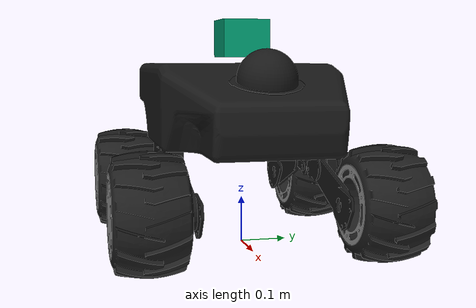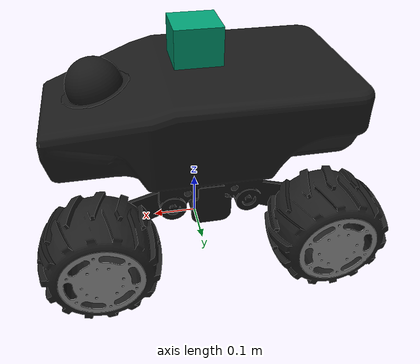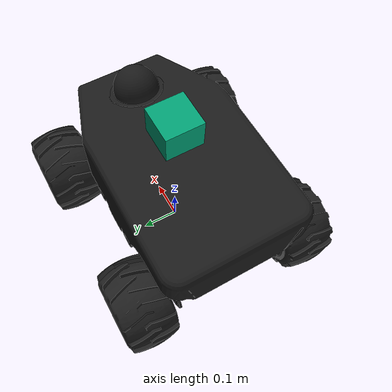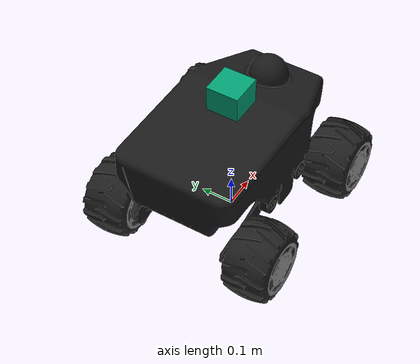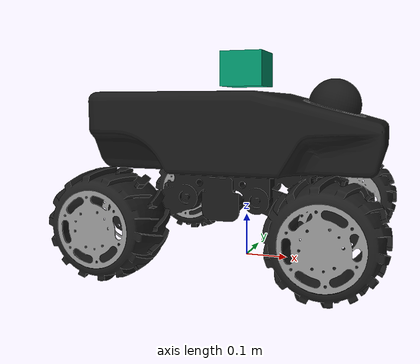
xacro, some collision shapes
<?xml version="1.0"?>
<robot name="summit_xl" xmlns:xacro="http://www.ros.org/wiki/xacro">

  <!-- Import all Gazebo-customization elements, including Gazebo colors -->
  <xacro:include filename="$(find summit_xl_description)/urdf/bases/summit_xl_base.gazebo.xacro" />
  <xacro:include filename="$(find summit_xl_description)/urdf/bases/summit_xl_base.urdf.xacro" />
  <xacro:include filename="$(find summit_xl_description)/urdf/wheels/rubber_wheel.urdf.xacro" />
  <xacro:include filename="$(find summit_xl_description)/urdf/sensors/hokuyo_urg04lx.urdf.xacro" />
  <xacro:include filename="$(find summit_xl_description)/urdf/sensors/hokuyo_utm30lx.urdf.xacro" />
  <xacro:include filename="$(find summit_xl_description)/urdf/sensors/axis.urdf.xacro" />
  <xacro:include filename="$(find summit_xl_description)/urdf/sensors/imu.urdf.xacro" />

  <!-- Robot mechanical and motor parameters -->
  <xacro:property name="PI" value="3.1415926535897931"/>
  <xacro:property name="wheel_offset_x" value="0.229" />    <!-- x,y,z in base_link CS -->
  <xacro:property name="wheel_offset_y" value="0.234" />    <!-- y distance between base_link and the center of the wheel -->
  <xacro:property name="wheel_offset_z" value="0.0" />

  <xacro:summit_xl_base name="summit_xl" publish_bf="true" hq="true" />

  <xacro:summit_xl_skid_gazebo/>

  <!-- WHEELS -->

  <xacro:rubber_wheel name="front_right" parent="base_link" reflect="0" hq="true">
    <origin xyz="${wheel_offset_x} -${wheel_offset_y} ${wheel_offset_z}" rpy="0 0 0"/>
  </xacro:rubber_wheel>

  <xacro:rubber_wheel name="front_left" parent="base_link" reflect="1" hq="true">
    <origin xyz="${wheel_offset_x} ${wheel_offset_y} ${wheel_offset_z}" rpy="0 0 0"/>
  </xacro:rubber_wheel>

  <xacro:rubber_wheel name="back_left" parent="base_link" reflect="1" hq="true">
    <origin xyz="-${wheel_offset_x} ${wheel_offset_y} ${wheel_offset_z}" rpy="0 0 0"/>
  </xacro:rubber_wheel>

  <xacro:rubber_wheel name="back_right" parent="base_link" reflect="0" hq="true">
    <origin xyz="-${wheel_offset_x} -${wheel_offset_y} ${wheel_offset_z}" rpy="0 0 0"/>
  </xacro:rubber_wheel>

	<!-- SENSORS -->

  <xacro:sensor_hokuyo_utm30lx name="hokuyo" parent="base_link">
    <origin xyz="0.0 0.0 0.33" rpy="0 0 0"/>
  </xacro:sensor_hokuyo_utm30lx>

  <xacro:sensor_axis name="camera" parent="base_link">
		<origin xyz="0.19 0 0.17" rpy="0 ${15*PI/180} 0"/>
  </xacro:sensor_axis>

  <xacro:sensor_imu name="imu" parent="base_link">
		<origin xyz="-0.18 0.0 0.170" rpy="0 0 0"/>
  </xacro:sensor_imu>

</robot>

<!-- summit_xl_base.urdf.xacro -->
<robot name="summit_xl" xmlns:xacro="http://www.ros.org/wiki/xacro">

	<xacro:include filename="$(find summit_xl_description)/urdf/bases/summit_xl_base.gazebo.xacro" />

  <xacro:macro name="summit_xl_base" params="name publish_bf hq">

  <!-- Robot mechanical and motor parameters -->
  <xacro:property name="PI" value="3.1415926535897931"/>
  <xacro:property name="wheel_width" value="0.175" />

  <!-- BASE FOOTPRINT -->
  <xacro:if value="${publish_bf}">
    <link name="base_footprint">
      <visual>
          <origin xyz="0 0 0" rpy="0 0 0" />
          <geometry>
             <box size="0.001 0.001 0.001" />
          </geometry>
      </visual>
    </link>

    <joint name="base_footprint_joint" type="fixed">
      <origin xyz="0 0 ${wheel_radius}" rpy="0 0 0" /> <!-- ${wheel_radius} property must be defined inside wheel description -->
      <parent link="base_footprint"/>
      <child link="base_link" />
    </joint>
  </xacro:if>

  <!-- BASE_LINK -->
  <link name="base_link">
    <inertial>
      <mass value="25.0" />
      <origin xyz="0 0 0" />
      <inertia  ixx="1.391" ixy="0.004"  ixz="0.0"  iyy="6.853"  iyz="0.0"  izz="6.125" />
    </inertial>
    <visual>
       <origin xyz="0 0 0" rpy="0 0 0" />
       <xacro:if value="${hq}">
       <geometry>
	     <mesh filename="package://summit_xl_description/meshes/bases/summit_xl_chassis.dae"/>
       </geometry>
       </xacro:if>
       <xacro:unless value="${hq}">
       <geometry>
	     <mesh filename="package://summit_xl_description/meshes/bases/summit_xl_chassis_simple.stl"/>
       </geometry>
       </xacro:unless>
       <material name="darkgrey">
         <color rgba="0.1 0.1 0.1 1"/>
       </material>
    </visual>
    <collision>
       <origin xyz="0 0 0" rpy="0 0 0 " />
       <geometry>
         <mesh filename="package://summit_xl_description/meshes/bases/summit_xl_chassis_simple.stl"/>
       </geometry>
    </collision>
  </link>

  <!-- COVERS AND SUSPENSIONS -->

  <!-- LOGOS -->

  </xacro:macro>
</robot>

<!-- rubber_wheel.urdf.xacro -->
<robot name="wheel" xmlns:xacro="http://www.ros.org/wiki/xacro">

  <xacro:property name="M_PI" value="3.1415926535897931" />
  <!-- Wheels -->
  <property name="wheel_radius" value="0.117" />
  <property name="wheel_height" value="0.14" />
  <property name="wheel_mass" value="6.5" /> <!-- in kg-->

  <xacro:macro name="cylinder_inertia" params="m r h">
    <inertia  ixx="${m*(3*r*r+h*h)/12}" ixy = "0" ixz = "0"
              iyy="${m*(3*r*r+h*h)/12}" iyz = "0"
              izz="${m*r*r/2}" />
  </xacro:macro>

  <xacro:macro name="rubber_wheel" params="name parent *origin reflect hq">

<!--WHEEL TIRE -->
    <joint name="joint_${name}_wheel" type="continuous">
      <parent link="${parent}"/>
      <child link="${name}_wheel"/>
      <insert_block name="origin" />
      <axis xyz="0 1 0" rpy="0 0 0" />
      <limit effort="100" velocity="100"/>
      <joint_properties damping="0.0" friction="0.0"/>
    </joint>

    <link name="${name}_wheel">
      <visual>
        <!-- HIGH RESOLUTION WHEELS -->
        <xacro:if value="${hq}">
          <origin xyz="0 0 0" rpy="0 0 0" />
          <geometry>
            <mesh filename="package://summit_xl_description/meshes/wheels/rubber_wheel.dae" />
          </geometry>
        </xacro:if>
       <!-- LOW RESOLUTION WHEELS -->
        <xacro:unless value="${hq}">
          <origin xyz="0 0 0" rpy="${M_PI/2} 0 0" />
          <geometry>
            <cylinder length="${wheel_height}" radius="${wheel_radius}" />
          </geometry>
        </xacro:unless>

      </visual>
      <collision>
		<origin xyz="0 0 0" rpy="${M_PI/2} 0 0" />
        <geometry>
          <cylinder length="${wheel_height}" radius="${wheel_radius}" />
        </geometry>
      </collision>
      <inertial>
        <mass value="${wheel_mass}" />
        <origin xyz="0 0 0" />
        <cylinder_inertia  m="${wheel_mass}" r="${wheel_radius}" h="${wheel_height}" />
      </inertial>
    </link>

<!-- WHEEL COVERS -->

    <joint name="joint_cover_${name}_wheel" type="fixed">
      <parent link="${name}_wheel"/>
      <child link="cover_${name}1_wheel"/>
      <origin xyz="0 0 0" rpy="0 0 0"/>
    </joint>

     <link name="cover_${name}1_wheel">
      <visual>
		<origin xyz="0 0 0" rpy="${reflect*PI} 0 0" />
        <geometry>
          <mesh filename="package://summit_xl_description/meshes/wheels/rubber_wheel_cover.dae" />
        </geometry>
      </visual>
<!-- MOTOR VISUAL -->

     </link>

    <!-- Transmission is important to link the joints and the controller (see summit_xl_control/config/summit_xl_control.yaml)-->
    <transmission name="${name}_wheel_joint_trans">
      <type>transmission_interface/SimpleTransmission</type>
      <joint name="joint_${name}_wheel" />
      <actuator name="${name}_wheel_joint_motor">
        <hardwareInterface>EffortJointInterface</hardwareInterface>
        <mechanicalReduction>1</mechanicalReduction>
      </actuator>
    </transmission>

    <gazebo reference="${name}_wheel">
			<mu1 value="5.0"/>
			<mu2 value="0.5"/>
			<kp value="10000000.0" />
			<kd value="1.0" />
			<fdir1 value="1 0 0"/>
			<material>Gazebo/Black</material>
      <turnGravityOff>false</turnGravityOff>
    </gazebo>

    <gazebo reference="cover_${name}1_wheel">
      <material>Gazebo/Grey</material>
    </gazebo>

  </xacro:macro>

</robot>

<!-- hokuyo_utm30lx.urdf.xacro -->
<robot name="sensor_hokuyo_utm30lx" xmlns:xacro="http://ros.org/wiki/xacro">

  <xacro:macro name="sensor_hokuyo_utm30lx" params="name parent *origin">

    <joint name="${name}_laser_joint" type="fixed">
      <!-- FRONT MOUNT  -->
      <!-- origin xyz="0.29 0 0.1" -->
      <!-- TOP MOUNT -->
      <!-- origin xyz="0.0 0.0 0.325"-->
      <insert_block name="origin" />
      <parent link="${parent}"/>
      <child link="${name}_laser_link"/>
	</joint>

	<link name="${name}_laser_link">
		<collision>
			<origin xyz="0 0 0" rpy="0 0 0"/>
			<geometry>
				<box size="0.1 0.1 0.08"/>
			</geometry>
		</collision>

		<visual>
			<origin xyz="0 0 0" rpy="0 0 0"/>
			<geometry>
	     		<mesh filename="package://summit_xl_description/meshes/sensors/hokuyo_utm_30lx.dae"/>
			</geometry>
		</visual>

		<inertial>
			<mass value="1e-5" />
			<origin xyz="0 0 0" rpy="0 0 0"/>
			<inertia ixx="1e-6" ixy="0" ixz="0" iyy="1e-6" iyz="0" izz="1e-6" />
		</inertial>
	</link>

	<!-- Hokuyo sensor for simulation -->
	<sensor_hokuyo_gazebo/>

  </xacro:macro>

  <xacro:macro name="sensor_hokuyo_gazebo">
    <gazebo reference="${name}_laser_link">
			<sensor type="ray" name="${name}_sensor">
				<pose>0 0 0 0 0 0</pose>
				<visualize>false</visualize>
				<update_rate>30</update_rate>
				<ray>
					<scan>
						<horizontal>
							<samples>1081</samples>
							<resolution>1</resolution>
							<min_angle>2.35619449</min_angle>  <!-- +/-135 deg -->
							<max_angle>-2.35619449</max_angle>
						</horizontal>
					</scan>
					<range>
						<min>0.10</min>
						<max>30.0</max>
						<resolution>0.01</resolution>
					</range>
					<noise>
						<type>gaussian</type>
						<mean>0.0</mean>
						<stddev>0.01</stddev>
					</noise>
				</ray>
				<plugin name="gazebo_ros_head_hokuyo_controller" filename="libgazebo_ros_laser.so">
					<topicName>${name}/scan</topicName>
					<frameName>${name}_laser_link</frameName>
				</plugin>
			</sensor>
	</gazebo>
  </xacro:macro>

</robot>

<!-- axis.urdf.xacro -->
<robot name="sensor_axis" xmlns:xacro="http://ros.org/wiki/xacro">

	<xacro:property name="ptz_joint_effort_limit" value="100.0" />
  <xacro:property name="ptz_joint_velocity_limit" value="100.0"/>
  <xacro:property name="ptz_joint_friction" value="0.1" />
  <xacro:property name="ptz_joint_damping" value="0.1" />
  <xacro:property name="ptz_mechanical_reduction" value="1.0" />

  <xacro:macro name="sensor_axis" params="name parent *origin">

 	  <joint name="${name}_joint" type="fixed">
	      <axis xyz="0 1 0" />
				<insert_block name="origin"/>
	      <parent link="${parent}"/>
	      <child link="${name}_link"/>
	  </joint>

    <link name="${name}_link">
      <inertial>
				<origin xyz="0.03 0.0 -0.3" rpy="0 0 0"/>
        <mass value="0.1" />
        <origin xyz="0 0 0" rpy="0 0 0" />
        <inertia ixx="0.1" ixy="0" ixz="0" iyy="0.1" iyz="0" izz="0.1" />
      </inertial>
      <visual>
	      <origin xyz="0.03 0.0 -0.3" rpy="0 0 0"/> <!-- to center the axis model -->
	      <material name="axis_color">
           <color rgba="0.1 0.1 0.1 1"/>
        </material>
	      <geometry>
					<mesh filename= "package://summit_xl_description/meshes/xl_fotonic/axis_p5512.stl" scale="1.0 1.0 1.0"/>
	      </geometry>

	    </visual>
	    <collision>
	      <origin xyz="0.03 0.0 -0.3" rpy="0 0 0"/>
	      <geometry>
	        <mesh filename= "package://summit_xl_description/meshes/xl_fotonic/axis_p5512.stl" scale="1.0 1.0 1.0"/>
	      </geometry>
	    </collision>
    </link>

	  <joint name="joint_${name}_pan" type="continuous">
	     <axis xyz="0 0 1" />
	     <origin xyz="0.0 0.0 0.1"/>
	     <parent link="${name}_link"/>
	     <child link="${name}_pan_link"/>
	     <limit effort="${ptz_joint_effort_limit}" velocity="${ptz_joint_velocity_limit}" lower="-3.1416" upper="3.1416"/>
	     <joint_properties damping="${ptz_joint_damping}" friction="{ptz_joint_friction}"/>
	  </joint>

	  <link name="${name}_pan_link">
	     <inertial>
	       <mass value="0.1" />
	       <origin xyz="0 0 0" rpy="0 0 0" />
	       <inertia ixx="0.1" ixy="0" ixz="0" iyy="0.1" iyz="0" izz="0.1" />
	    </inertial>
	  </link>

	  <transmission name="${name}_pan_trans">
		 <type>transmission_interface/SimpleTransmission</type>
	     <joint name="joint_${name}_pan" />
	     <actuator name="pan_motor">
			   <hardwareInterface>EffortJointInterface</hardwareInterface>
	       <mechanicalReduction>${ptz_mechanical_reduction}</mechanicalReduction>
	     </actuator>
	  </transmission>

	  <joint name="joint_${name}_tilt" type="continuous">
	     <axis xyz="0 1 0" />
	     <origin xyz="0.0 0.0 0.0"/>
	     <parent link="${name}_pan_link"/>
	     <child link="${name}_tilt_link"/>
	     <limit effort="${ptz_joint_effort_limit}" velocity="${ptz_joint_velocity_limit}" lower="-1.5708" upper="1.5708"/>
	     <joint_properties damping="${ptz_joint_damping}" friction="{ptz_joint_friction}"/>
	  </joint>

	  <link name="${name}_tilt_link">
	     <inertial>
	       <mass value="0.1" />
	       <origin xyz="0 0 0" rpy="0 0 0" />
	       <inertia ixx="0.1" ixy="0" ixz="0" iyy="0.1" iyz="0" izz="0.1" />
	    </inertial>
	  </link>

	  <transmission name="${name}_tilt_trans">
		 <type>transmission_interface/SimpleTransmission</type>
	     <joint name="joint_${name}_tilt" />
	     <actuator name="tilt_motor">
				 <hardwareInterface>EffortJointInterface</hardwareInterface>
				 <mechanicalReduction>${ptz_mechanical_reduction}</mechanicalReduction>
	     </actuator>
	  </transmission>

	  <gazebo reference="${name}_link">
      <material>Gazebo/FlatBlack</material>
    </gazebo>

		<!-- Axis sensor for simulation -->
		<sensor_axis_gazebo/>

  </xacro:macro>

  <xacro:macro name="sensor_axis_gazebo">

    <gazebo reference="${name}_tilt_link">
	    <sensor type="camera" name="camera1">
	      <update_rate>30.0</update_rate>
	      <camera name="head">
	        <horizontal_fov>1.3962634</horizontal_fov>
	        <image>
	          <width>800</width>
	          <height>800</height>
	          <format>R8G8B8</format>
	        </image>
	        <clip>
	          <near>0.03</near>
	          <far>300</far>
	        </clip>
	        <noise>
	          <type>gaussian</type>
	          <mean>0.0</mean>
	          <stddev>0.007</stddev>
	        </noise>
	      </camera>
	      <plugin name="camera_controller" filename="libgazebo_ros_camera.so">
	        <alwaysOn>true</alwaysOn>
	        <updateRate>0.0</updateRate>
	        <cameraName>${name}</cameraName>
	        <imageTopicName>image_raw</imageTopicName>
	        <cameraInfoTopicName>camera_info</cameraInfoTopicName>
	        <frameName>${name}_tilt_link</frameName>
	        <hackBaseline>0.07</hackBaseline>
	        <distortionK1>0.0</distortionK1>
	        <distortionK2>0.0</distortionK2>
	        <distortionK3>0.0</distortionK3>
	        <distortionT1>0.0</distortionT1>
	        <distortionT2>0.0</distortionT2>
	      </plugin>
	    </sensor>
	  </gazebo>

  </xacro:macro>

</robot>

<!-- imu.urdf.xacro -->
<robot name="sensor_imu" xmlns:xacro="http://ros.org/wiki/xacro">

  <xacro:macro name="sensor_imu" params="name parent *origin">

	  <joint name="${name}_joint" type="fixed">
	      <axis xyz="1 0 0"/>
	      <!--origin xyz="0 0 0.2825"/-->
	      <insert_block name="origin"/>
	      <parent link="${parent}"/>
	      <child link="${name}_link"/>
	  </joint>

	  <link name="${name}_link">
	      <inertial>
	        <mass value="0.001"/>
	        <origin rpy="0 0 0" xyz="0 0 0"/>
	        <inertia ixx="0.0001" ixy="0" ixz="0" iyy="0.000001" iyz="0" izz="0.0001"/>
	      </inertial>
	      <visual>
	        <origin rpy="0 0 0" xyz="0 0 0"/>
	        <geometry>
	          <box size="0.001 0.001 0.001"/>
	        </geometry>
	      </visual>
	      <collision>
	        <origin rpy="0 0 0" xyz="0 0 0"/>
	        <geometry>
	          <box size=".001 .001 .001"/>
	        </geometry>
	      </collision>
	  </link>

	  <gazebo>
	    <plugin name="ros_imu" filename="libgazebo_ros_imu.so">
	       <topicName>imu_data</topicName>
				 <bodyName>imu_link</bodyName>
				 <serviceName>imu_service</serviceName>
	       <gaussianNoise>0.005</gaussianNoise>
	    </plugin>
	  </gazebo>

  </xacro:macro>

</robot>
